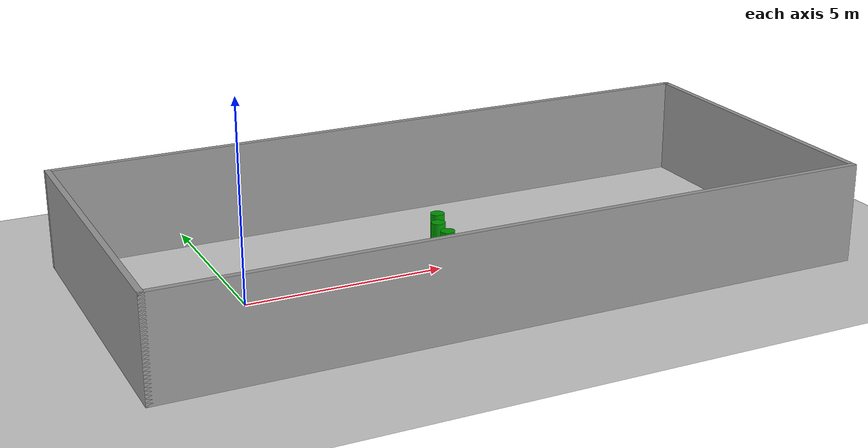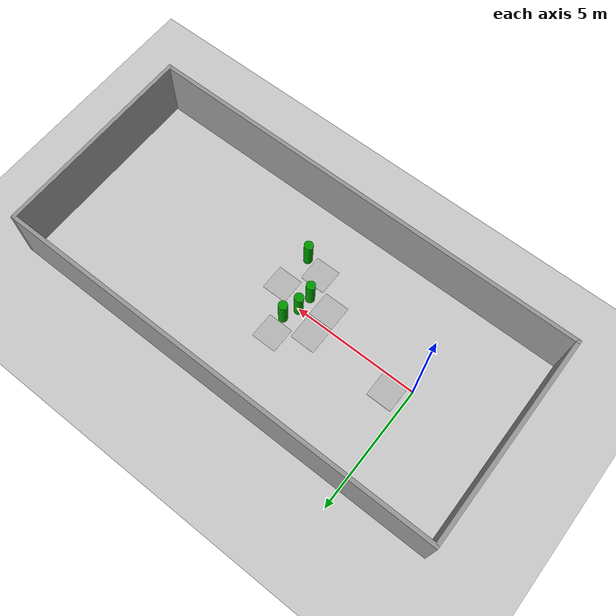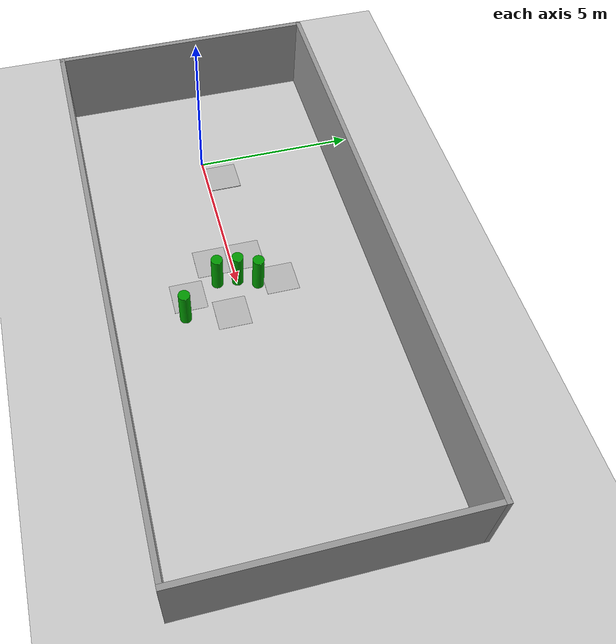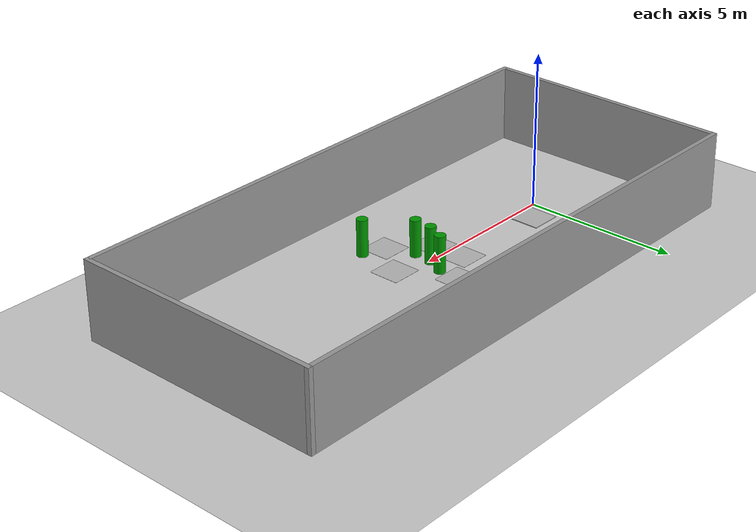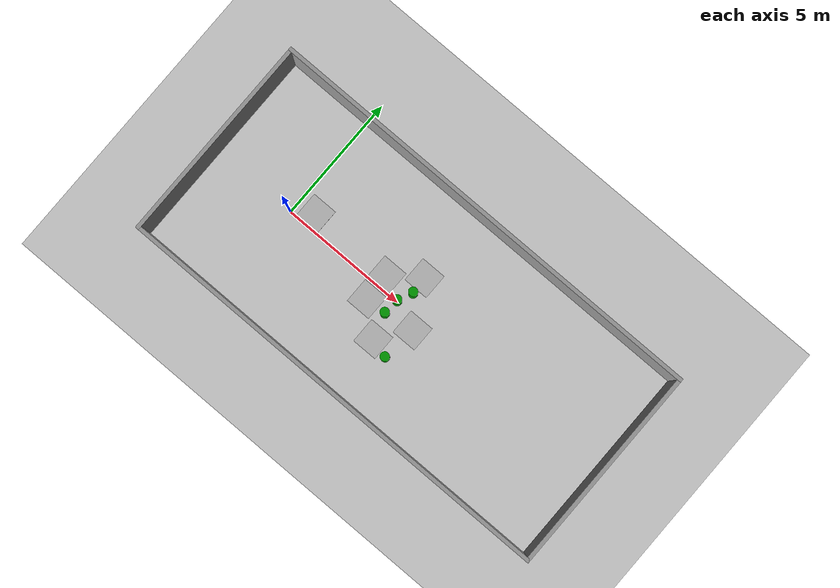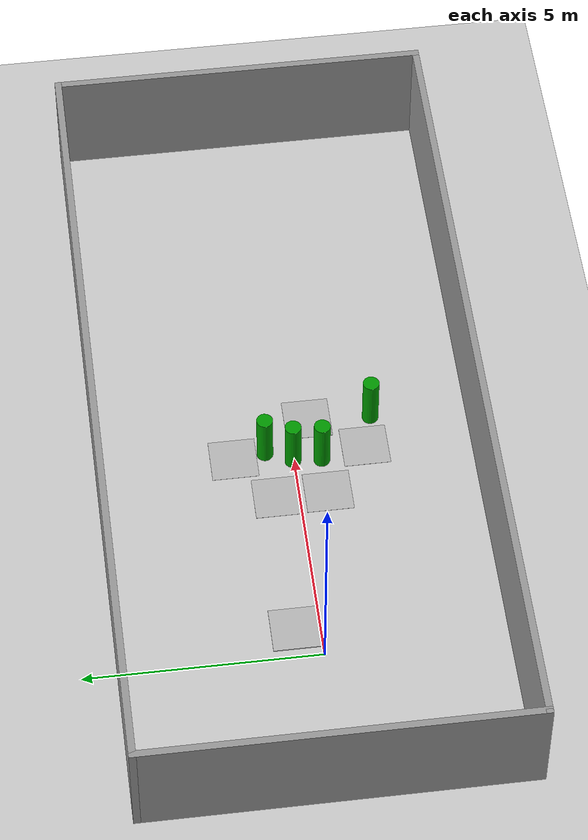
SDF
<sdf version="1.6">
 <world name="default">
  <light name="sun" type="directional">
   <pose>0 0 10 0 -0 0</pose>
   <diffuse>0.8 0.8 0.8 1</diffuse>
   <specular>0.2 0.2 0.2 1</specular>
   <attenuation>
    <range>1000</range>
    <constant>0.9</constant>
    <linear>0.01</linear>
    <quadratic>0.001</quadratic>
   </attenuation>
   <direction>-0.5 0.1 -0.9</direction>
  </light>
  <model name="ground_plane">
   <static>1</static>
   <link name="link">
    <collision name="collision">
     <geometry><plane><normal>0 0 1</normal><size>100 100</size></plane></geometry>
     <surface><friction><ode><mu>100</mu><mu2>50</mu2></ode></friction></surface>
    </collision>
    <visual name="visual">
     <cast_shadows>0</cast_shadows>
     <geometry><plane><normal>0 0 1</normal><size>100 100</size></plane></geometry>
     <material>
      <script><uri>file://media/materials/scripts/gazebo.material</uri><name>Gazebo/Grey</name></script>
     </material>
    </visual>
   </link>
  </model>
  <gravity>0 0 -9.8</gravity>
  <magnetic_field>6e-06 2.3e-05 -4.2e-05</magnetic_field>
  <atmosphere type="adiabatic"/>
  <physics name="default_physics" default="0" type="ode">
   <max_step_size>0.001</max_step_size>
   <real_time_factor>1</real_time_factor>
   <real_time_update_rate>1000</real_time_update_rate>
  </physics>
  <scene><ambient>0.4 0.4 0.4 1</ambient><background>0.7 0.7 0.7 1</background><shadows>1</shadows></scene>
  <spherical_coordinates>
   <surface_model>EARTH_WGS84</surface_model>
   <latitude_deg>0</latitude_deg>
   <longitude_deg>0</longitude_deg>
   <elevation>0</elevation>
   <heading_deg>0</heading_deg>
  </spherical_coordinates>
  <model name="h_1">
   <link name="link">
    <pose>0 0 0.115 0 -0 0</pose>
    <inertial>
     <mass>1000</mass>
     <inertia><ixx>1000</ixx><ixy>0</ixy><ixz>0</ixz><iyy>1000</iyy><iyz>0</iyz><izz>1000</izz></inertia>
    </inertial>
    <collision name="collision">
     <geometry><box><size>0.496 0.496 0.01</size></box></geometry>
     <surface>
      <contact>
       <poissons_ratio>0.347</poissons_ratio>
       <elastic_modulus>8.8e+09</elastic_modulus>
       <ode><kp>100000</kp><kd>100</kd><max_vel>100</max_vel><min_depth>0.001</min_depth></ode>
      </contact>
      <friction>
       <torsional>
        <coefficient>1</coefficient>
        <use_patch_radius>0</use_patch_radius>
        <surface_radius>0.01</surface_radius>
       </torsional>
      </friction>
     </surface>
    </collision>
    <visual name="visual">
     <geometry><box><size>1 1 0.05</size></box></geometry>
     <material>
      <script>
       <uri>model://H/materials/scripts</uri>
       <uri>model://H/materials/textures</uri>
       <name>Mark/Diffuse2</name>
      </script>
     </material>
    </visual>
   </link>
   <pose>0.709548 0.535554 -0.135257 0 1e-06 0</pose>
  </model>
  <model name="zhuangjiache_0">
   <link name="link">
    <pose>0 0 0.115 0 -0 0</pose>
    <inertial>
     <mass>3.39</mass>
     <inertia><ixx>0.58</ixx><ixy>0</ixy><ixz>0</ixz><iyy>0.58</iyy><iyz>0</iyz><izz>0.19</izz></inertia>
    </inertial>
    <collision name="collision"><geometry><box><size>0.496 0.496 0.01</size></box></geometry></collision>
    <visual name="visual">
     <geometry><box><size>1 1 0.005</size></box></geometry>
     <material>
      <script>
       <uri>model://zhuangjiache/materials/scripts</uri>
       <uri>model://zhuangjiache/materials/textures</uri>
       <name>Mark/Diffuse6</name>
      </script>
     </material>
    </visual>
   </link>
   <pose>5.18828 -1.54393 -0.11 0 -0 0.00193</pose>
  </model>
  <model name="zhangpeng_0">
   <link name="link">
    <pose>0 0 0.115 0 -0 0</pose>
    <inertial>
     <mass>3.39</mass>
     <inertia><ixx>0.58</ixx><ixy>0</ixy><ixz>0</ixz><iyy>0.58</iyy><iyz>0</iyz><izz>0.19</izz></inertia>
    </inertial>
    <collision name="collision"><geometry><box><size>0.496 0.496 0.005</size></box></geometry></collision>
    <visual name="visual">
     <geometry><box><size>1 1 0.005</size></box></geometry>
     <material>
      <script>
       <uri>model://zhangpeng/materials/scripts</uri>
       <uri>model://zhangpeng/materials/textures</uri>
       <name>Mark/Diffuse5</name>
      </script>
     </material>
    </visual>
   </link>
   <pose>4.08588 -0.603056 -0.1125 0 -0 0</pose>
  </model>
  <model name="tanke_0">
   <link name="link">
    <pose>0 0 0.115 0 -0 0</pose>
    <inertial>
     <mass>3.39</mass>
     <inertia><ixx>0.58</ixx><ixy>0</ixy><ixz>0</ixz><iyy>0.58</iyy><iyz>0</iyz><izz>0.19</izz></inertia>
    </inertial>
    <collision name="collision"><geometry><box><size>0.496 0.496 0.005</size></box></geometry></collision>
    <visual name="visual">
     <geometry><box><size>1 1 0.005</size></box></geometry>
     <material>
      <script>
       <uri>model://tanke/materials/scripts</uri>
       <uri>model://tanke/materials/textures</uri>
       <name>Mark/Diffuse4</name>
      </script>
     </material>
    </visual>
   </link>
   <pose>4.06758 0.492132 -0.1125 0 -0 0</pose>
  </model>
  <model name="qiaoliang_0">
   <link name="link">
    <pose>0 0 0.115 0 -0 0</pose>
    <inertial>
     <mass>3.39</mass>
     <inertia><ixx>0.58</ixx><ixy>0</ixy><ixz>0</ixz><iyy>0.58</iyy><iyz>0</iyz><izz>0.19</izz></inertia>
    </inertial>
    <collision name="collision"><geometry><box><size>0.496 0.496 0.005</size></box></geometry></collision>
    <visual name="visual">
     <geometry><box><size>1 1 0.005</size></box></geometry>
     <material>
      <script>
       <uri>model://qiaoliang/materials/scripts</uri>
       <uri>model://qiaoliang/materials/textures</uri>
       <name>Mark/Diffuse3</name>
      </script>
     </material>
    </visual>
   </link>
   <pose>6.0531 -0.398863 -0.1125 0 -0 0</pose>
  </model>
  <model name="dibao_0">
   <link name="link">
    <pose>0 0 0.115 0 -0 0</pose>
    <inertial>
     <mass>3.39</mass>
     <inertia><ixx>0.58</ixx><ixy>0</ixy><ixz>0</ixz><iyy>0.58</iyy><iyz>0</iyz><izz>0.19</izz></inertia>
    </inertial>
    <collision name="collision"><geometry><box><size>0.496 0.496 0.005</size></box></geometry></collision>
    <visual name="visual">
     <geometry><box><size>1 1 0.005</size></box></geometry>
     <material>
      <script>
       <uri>model://dibao/materials/scripts</uri>
       <uri>model://dibao/materials/textures</uri>
       <name>Mark/Diffuse1</name>
      </script>
     </material>
    </visual>
   </link>
   <pose>5.16677 1.29934 -0.1125 0 -0 -3.5e-05</pose>
  </model>
  <model name="green_cylinder">
   <link name="link">
    <inertial>
     <mass>1</mass>
     <inertia><ixx>0.145833</ixx><ixy>0</ixy><ixz>0</ixz><iyy>0.145833</iyy><iyz>0</iyz><izz>0.125</izz></inertia>
    </inertial>
    <visual name="visual">
     <geometry><cylinder><radius>0.175344</radius><length>1.20205</length></cylinder></geometry>
     <material>
      <script><name>Gazebo/Grey</name><uri>file://media/materials/scripts/gazebo.material</uri></script>
      <shader type="pixel"><normal_map>__default__</normal_map></shader>
      <ambient>0 0.6 0 0</ambient>
      <diffuse>0.7 0.7 0.7 1</diffuse>
      <specular>0.01 0.01 0.01 1</specular>
      <emissive>0 0 0 1</emissive>
     </material>
    </visual>
    <collision name="collision">
     <geometry><cylinder><radius>0.175344</radius><length>1.20205</length></cylinder></geometry>
     <surface>
      <friction>
       <ode><mu>1</mu><mu2>1</mu2><fdir1>0 0 0</fdir1><slip1>0</slip1><slip2>0</slip2></ode>
       <torsional>
        <coefficient>1</coefficient>
        <patch_radius>0</patch_radius>
        <surface_radius>0</surface_radius>
        <use_patch_radius>1</use_patch_radius>
        <ode><slip>0</slip></ode>
       </torsional>
      </friction>
      <bounce><restitution_coefficient>0</restitution_coefficient><threshold>1e+06</threshold></bounce>
      <contact>
       <collide_without_contact>0</collide_without_contact>
       <collide_without_contact_bitmask>1</collide_without_contact_bitmask>
       <collide_bitmask>1</collide_bitmask>
       <ode>
        <soft_cfm>0</soft_cfm>
        <soft_erp>0.2</soft_erp>
        <kp>1e+13</kp>
        <kd>1</kd>
        <max_vel>0.01</max_vel>
        <min_depth>0</min_depth>
       </ode>
       <bullet>
        <split_impulse>1</split_impulse>
        <split_impulse_penetration_threshold>-0.01</split_impulse_penetration_threshold>
        <soft_cfm>0</soft_cfm>
        <soft_erp>0.2</soft_erp>
        <kp>1e+13</kp>
        <kd>1</kd>
       </bullet>
      </contact>
     </surface>
    </collision>
   </link>
   <static>0</static>
   <pose>5.21933 0.609864 0.601017 -0 -0 -1.7e-05</pose>
  </model>
  <model name="green_cylinder_clone">
   <link name="link">
    <inertial>
     <mass>1</mass>
     <inertia><ixx>0.145833</ixx><ixy>0</ixy><ixz>0</ixz><iyy>0.145833</iyy><iyz>0</iyz><izz>0.125</izz></inertia>
    </inertial>
    <visual name="visual">
     <geometry><cylinder><radius>0.175344</radius><length>1.20205</length></cylinder></geometry>
     <material>
      <script><name>Gazebo/Grey</name><uri>file://media/materials/scripts/gazebo.material</uri></script>
      <shader type="pixel"><normal_map>__default__</normal_map></shader>
      <ambient>0 0.6 0 0</ambient>
      <diffuse>0.7 0.7 0.7 1</diffuse>
      <specular>0.01 0.01 0.01 1</specular>
      <emissive>0 0 0 1</emissive>
     </material>
    </visual>
    <collision name="collision">
     <geometry><cylinder><radius>0.175344</radius><length>1.20205</length></cylinder></geometry>
     <surface>
      <friction>
       <ode><mu>1</mu><mu2>1</mu2><fdir1>0 0 0</fdir1><slip1>0</slip1><slip2>0</slip2></ode>
       <torsional>
        <coefficient>1</coefficient>
        <patch_radius>0</patch_radius>
        <surface_radius>0</surface_radius>
        <use_patch_radius>1</use_patch_radius>
        <ode><slip>0</slip></ode>
       </torsional>
      </friction>
      <bounce><restitution_coefficient>0</restitution_coefficient><threshold>1e+06</threshold></bounce>
      <contact>
       <collide_without_contact>0</collide_without_contact>
       <collide_without_contact_bitmask>1</collide_without_contact_bitmask>
       <collide_bitmask>1</collide_bitmask>
       <ode>
        <soft_cfm>0</soft_cfm>
        <soft_erp>0.2</soft_erp>
        <kp>1e+13</kp>
        <kd>1</kd>
        <max_vel>0.01</max_vel>
        <min_depth>0</min_depth>
       </ode>
       <bullet>
        <split_impulse>1</split_impulse>
        <split_impulse_penetration_threshold>-0.01</split_impulse_penetration_threshold>
        <soft_cfm>0</soft_cfm>
        <soft_erp>0.2</soft_erp>
        <kp>1e+13</kp>
        <kd>1</kd>
       </bullet>
      </contact>
     </surface>
    </collision>
   </link>
   <static>0</static>
   <pose>4.96747 0.035051 0.601016 0 -0 -0.13108</pose>
  </model>
  <model name="green_cylinder_clone_0">
   <link name="link">
    <inertial>
     <mass>1</mass>
     <inertia><ixx>0.145833</ixx><ixy>0</ixy><ixz>0</ixz><iyy>0.145833</iyy><iyz>0</iyz><izz>0.125</izz></inertia>
    </inertial>
    <visual name="visual">
     <geometry><cylinder><radius>0.175344</radius><length>1.20205</length></cylinder></geometry>
     <material>
      <script><name>Gazebo/Grey</name><uri>file://media/materials/scripts/gazebo.material</uri></script>
      <shader type="pixel"><normal_map>__default__</normal_map></shader>
      <ambient>0 0.6 0 0</ambient>
      <diffuse>0.7 0.7 0.7 1</diffuse>
      <specular>0.01 0.01 0.01 1</specular>
      <emissive>0 0 0 1</emissive>
     </material>
    </visual>
    <collision name="collision">
     <geometry><cylinder><radius>0.175344</radius><length>1.20205</length></cylinder></geometry>
     <surface>
      <friction>
       <ode><mu>1</mu><mu2>1</mu2><fdir1>0 0 0</fdir1><slip1>0</slip1><slip2>0</slip2></ode>
       <torsional>
        <coefficient>1</coefficient>
        <patch_radius>0</patch_radius>
        <surface_radius>0</surface_radius>
        <use_patch_radius>1</use_patch_radius>
        <ode><slip>0</slip></ode>
       </torsional>
      </friction>
      <bounce><restitution_coefficient>0</restitution_coefficient><threshold>1e+06</threshold></bounce>
      <contact>
       <collide_without_contact>0</collide_without_contact>
       <collide_without_contact_bitmask>1</collide_without_contact_bitmask>
       <collide_bitmask>1</collide_bitmask>
       <ode>
        <soft_cfm>0</soft_cfm>
        <soft_erp>0.2</soft_erp>
        <kp>1e+13</kp>
        <kd>1</kd>
        <max_vel>0.01</max_vel>
        <min_depth>0</min_depth>
       </ode>
       <bullet>
        <split_impulse>1</split_impulse>
        <split_impulse_penetration_threshold>-0.01</split_impulse_penetration_threshold>
        <soft_cfm>0</soft_cfm>
        <soft_erp>0.2</soft_erp>
        <kp>1e+13</kp>
        <kd>1</kd>
       </bullet>
      </contact>
     </surface>
    </collision>
   </link>
   <static>0</static>
   <pose>4.9202 -0.58182 0.601024 0 0 -0.168892</pose>
  </model>
  <model name="green_cylinder_clone_1">
   <link name="link">
    <inertial>
     <mass>1</mass>
     <inertia><ixx>0.145833</ixx><ixy>0</ixy><ixz>0</ixz><iyy>0.145833</iyy><iyz>0</iyz><izz>0.125</izz></inertia>
    </inertial>
    <visual name="visual">
     <geometry><cylinder><radius>0.175344</radius><length>1.20205</length></cylinder></geometry>
     <material>
      <script><name>Gazebo/Grey</name><uri>file://media/materials/scripts/gazebo.material</uri></script>
      <shader type="pixel"><normal_map>__default__</normal_map></shader>
      <ambient>0 0.6 0 0</ambient>
      <diffuse>0.7 0.7 0.7 1</diffuse>
      <specular>0.01 0.01 0.01 1</specular>
      <emissive>0 0 0 1</emissive>
     </material>
    </visual>
    <collision name="collision">
     <geometry><cylinder><radius>0.175344</radius><length>1.20205</length></cylinder></geometry>
     <surface>
      <friction>
       <ode><mu>1</mu><mu2>1</mu2><fdir1>0 0 0</fdir1><slip1>0</slip1><slip2>0</slip2></ode>
       <torsional>
        <coefficient>1</coefficient>
        <patch_radius>0</patch_radius>
        <surface_radius>0</surface_radius>
        <use_patch_radius>1</use_patch_radius>
        <ode><slip>0</slip></ode>
       </torsional>
      </friction>
      <bounce><restitution_coefficient>0</restitution_coefficient><threshold>1e+06</threshold></bounce>
      <contact>
       <collide_without_contact>0</collide_without_contact>
       <collide_without_contact_bitmask>1</collide_without_contact_bitmask>
       <collide_bitmask>1</collide_bitmask>
       <ode>
        <soft_cfm>0</soft_cfm>
        <soft_erp>0.2</soft_erp>
        <kp>1e+13</kp>
        <kd>1</kd>
        <max_vel>0.01</max_vel>
        <min_depth>0</min_depth>
       </ode>
       <bullet>
        <split_impulse>1</split_impulse>
        <split_impulse_penetration_threshold>-0.01</split_impulse_penetration_threshold>
        <soft_cfm>0</soft_cfm>
        <soft_erp>0.2</soft_erp>
        <kp>1e+13</kp>
        <kd>1</kd>
       </bullet>
      </contact>
     </surface>
    </collision>
   </link>
   <static>0</static>
   <pose>5.93364 -1.76636 0.601019 0 -0 -0.012351</pose>
  </model>
  <model name="Untitled">
   <pose>5.40563 0.142696 0 0 -0 0</pose>
   <link name="Wall_10">
    <collision name="Wall_10_Collision">
     <geometry><box><size>8.25 0.15 2.5</size></box></geometry>
     <pose>0 0 1.25 0 -0 0</pose>
    </collision>
    <visual name="Wall_10_Visual">
     <pose>0 0 1.25 0 -0 0</pose>
     <geometry><box><size>8.25 0.15 2.5</size></box></geometry>
     <material>
      <script><uri>file://media/materials/scripts/gazebo.material</uri><name>Gazebo/Grey</name></script>
      <ambient>1 1 1 1</ambient>
     </material>
     <meta><layer>0</layer></meta>
    </visual>
    <pose>8.8 0 0 0 -0 1.5708</pose>
   </link>
   <link name="Wall_11">
    <collision name="Wall_11_Collision">
     <geometry><box><size>17.75 0.15 2.5</size></box></geometry>
     <pose>0 0 1.25 0 -0 0</pose>
    </collision>
    <visual name="Wall_11_Visual">
     <pose>0 0 1.25 0 -0 0</pose>
     <geometry><box><size>17.75 0.15 2.5</size></box></geometry>
     <material>
      <script><uri>file://media/materials/scripts/gazebo.material</uri><name>Gazebo/Grey</name></script>
      <ambient>1 1 1 1</ambient>
     </material>
     <meta><layer>0</layer></meta>
    </visual>
    <pose>-0 4.05 0 0 -0 3.14159</pose>
   </link>
   <link name="Wall_8">
    <collision name="Wall_8_Collision">
     <geometry><box><size>8.25 0.15 2.5</size></box></geometry>
     <pose>0 0 1.25 0 -0 0</pose>
    </collision>
    <visual name="Wall_8_Visual">
     <pose>0 0 1.25 0 -0 0</pose>
     <geometry><box><size>8.25 0.15 2.5</size></box></geometry>
     <material>
      <script><uri>file://media/materials/scripts/gazebo.material</uri><name>Gazebo/Grey</name></script>
      <ambient>1 1 1 1</ambient>
     </material>
     <meta><layer>0</layer></meta>
    </visual>
    <pose>-8.8 0 0 0 -0 -1.5708</pose>
   </link>
   <link name="Wall_9">
    <collision name="Wall_9_Collision">
     <geometry><box><size>17.75 0.15 2.5</size></box></geometry>
     <pose>0 0 1.25 0 -0 0</pose>
    </collision>
    <visual name="Wall_9_Visual">
     <pose>0 0 1.25 0 -0 0</pose>
     <geometry><box><size>17.75 0.15 2.5</size></box></geometry>
     <material>
      <script><uri>file://media/materials/scripts/gazebo.material</uri><name>Gazebo/Grey</name></script>
      <ambient>1 1 1 1</ambient>
     </material>
     <meta><layer>0</layer></meta>
    </visual>
    <pose>-0 -4.05 0 0 -0 0</pose>
   </link>
   <static>1</static>
  </model>
 </world>
</sdf>
